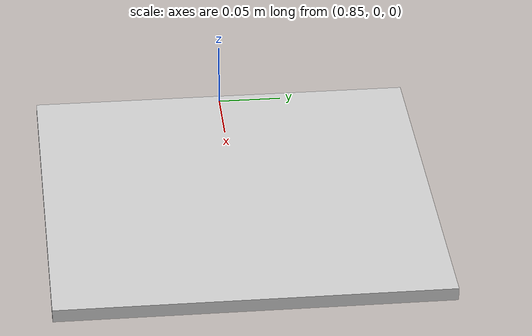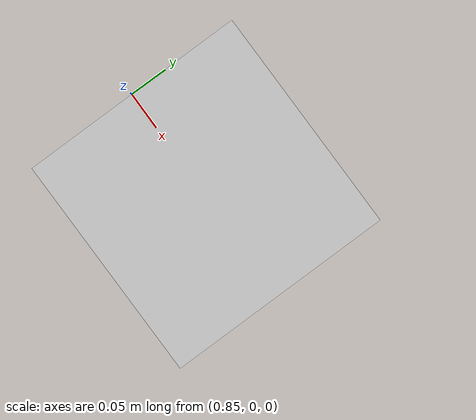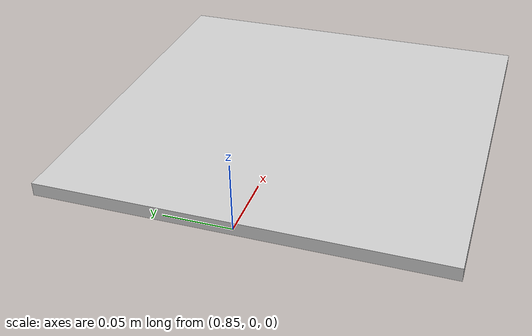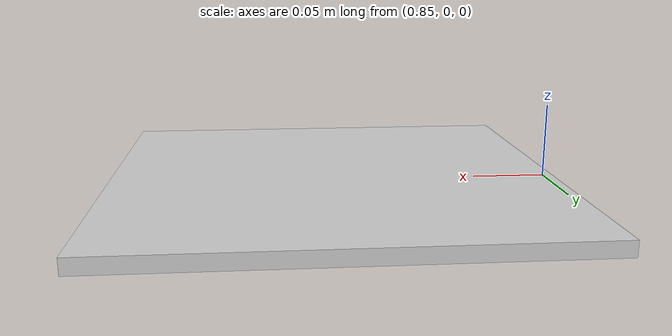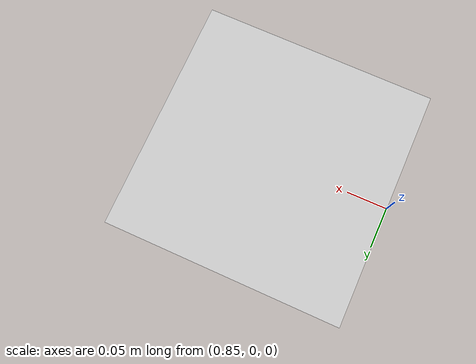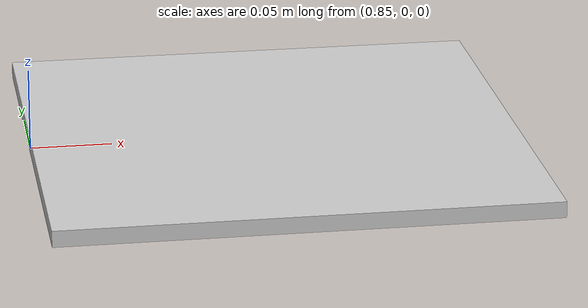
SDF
<?xml version="1.0"?>

<sdf version="1.6">
  <world name="default">
    <physics name="1ms" type="ignored">
      <max_step_size>0.001</max_step_size>
      <real_time_factor>1.0</real_time_factor>
    </physics>
    <plugin
      filename="ignition-gazebo-physics-system"
      name="ignition::gazebo::systems::Physics">
    </plugin>
    <plugin
      filename="ignition-gazebo-user-commands-system"
      name="ignition::gazebo::systems::UserCommands">
    </plugin>
    <plugin
      filename="ignition-gazebo-sensors-system"
      name="ignition::gazebo::systems::Sensors">
      <render_engine>ogre2</render_engine>
    </plugin>
    <plugin
      filename="ignition-gazebo-scene-broadcaster-system"
      name="ignition::gazebo::systems::SceneBroadcaster">
    </plugin>

    <model name="Apriltag36_11_00000">
      <pose>1 0 0 0 0 0</pose>
      <static>true</static>
      <link name="box">
      <visual name="box">
        <geometry>
          <box>
            <size>0.3 0.3 0.01</size>
          </box>
        </geometry>
        <material>
          <ambient>1 1 1 1</ambient>
          <diffuse>0.8 0.8 0.8 1</diffuse>
          <specular>0.8 0.8 0.8 1</specular>
          <pbr>
            <metal>
              <albedo_map>materials/textures/tag36_11_00000.png</albedo_map>
            </metal>
          </pbr>
        </material>
      </visual>
      </link>
    </model>
  </world>
</sdf>
